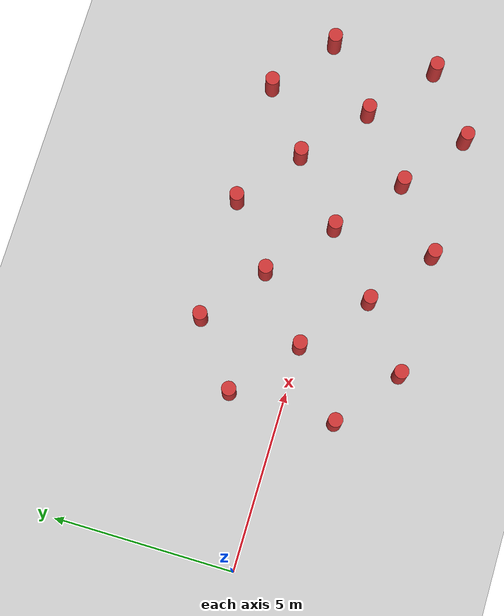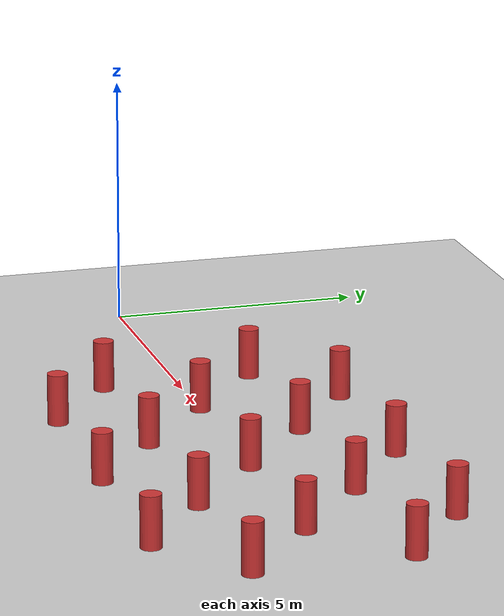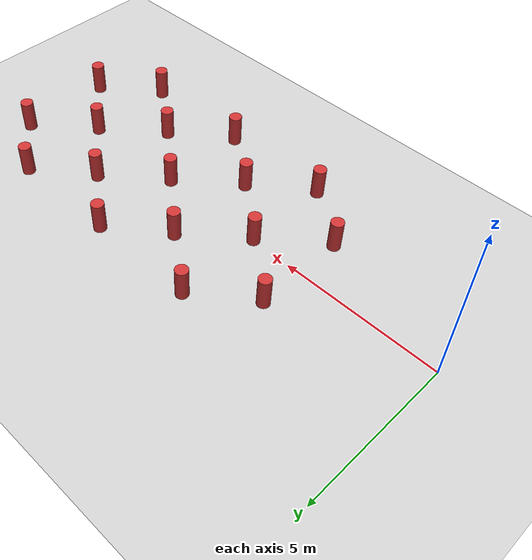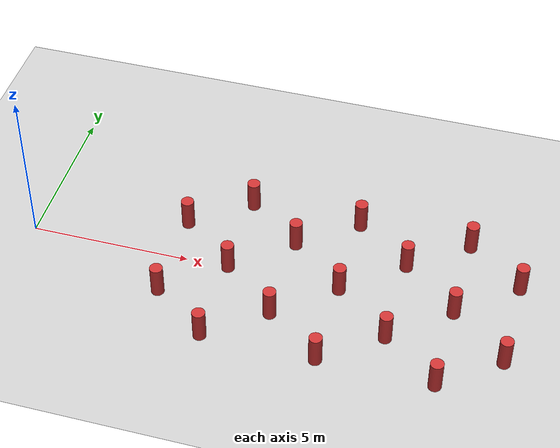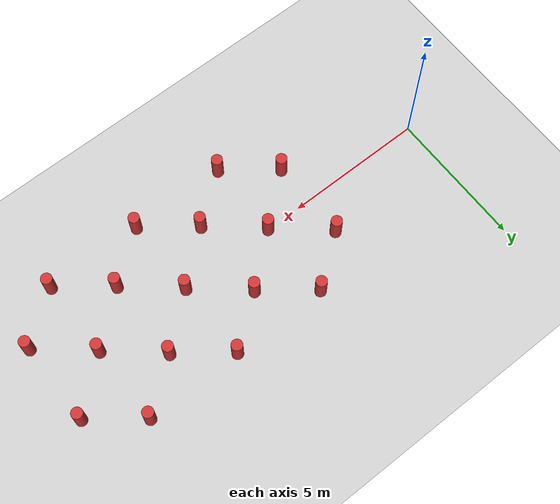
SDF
<?xml version="1.0" ?>
<sdf version="1.9">
  <world name="plum_dense">
    <physics name="default_physics" type="dart">
      <max_step_size>0.002</max_step_size>
      <real_time_factor>1.0</real_time_factor>
      <real_time_update_rate>500</real_time_update_rate>
      <dart>
        <solver><solver_type>pgs</solver_type></solver>
        <collision_detector>bullet</collision_detector>
      </dart>
    </physics>
    <plugin filename="gz-sim-sensors-system" name="gz::sim::systems::Sensors"><render_engine>ogre2</render_engine></plugin>
    <plugin filename="gz-sim-forcetorque-system" name="gz::sim::systems::ForceTorque"/>
    <plugin filename="gz-sim-physics-system" name="gz::sim::systems::Physics"/>
    <plugin filename="gz-sim-user-commands-system" name="gz::sim::systems::UserCommands"/>
    <plugin filename="gz-sim-scene-broadcaster-system" name="gz::sim::systems::SceneBroadcaster"/>
    <light type="directional" name="sun">
      <cast_shadows>true</cast_shadows><pose>0 0 10 0 0 0</pose>
      <diffuse>0.8 0.8 0.8 1</diffuse><specular>0.2 0.2 0.2 1</specular>
      <attenuation><range>1000</range><constant>0.9</constant><linear>0.01</linear><quadratic>0.001</quadratic></attenuation>
      <direction>-0.5 0.1 -0.9</direction>
    </light>
    <model name="ground_plane"><static>true</static><link name="link">
      <collision name="collision"><geometry><plane><normal>0 0 1</normal><size>100 100</size></plane></geometry>
        <surface><friction><ode><mu>0.8</mu><mu2>0.8</mu2></ode></friction></surface></collision>
      <visual name="visual"><geometry><plane><normal>0 0 1</normal><size>100 100</size></plane></geometry>
        <material><ambient>0.8 0.8 0.8 1</ambient><diffuse>0.8 0.8 0.8 1</diffuse></material></visual></link></model>
    <model name="obs_cyl_0"><static>true</static>
      <pose>4.56 1.48 0.5 0 0 0</pose>
      <link name="l"><collision name="c"><geometry><cylinder><radius>0.2</radius><length>1.0</length></cylinder></geometry></collision>
      <visual name="v"><geometry><cylinder><radius>0.2</radius><length>1.0</length></cylinder></geometry>
      <material><ambient>0.7 0.2 0.2 1</ambient><diffuse>0.8 0.2 0.2 1</diffuse></material></visual></link></model>
    <model name="obs_cyl_1"><static>true</static>
      <pose>4.56 -1.48 0.5 0 0 0</pose>
      <link name="l"><collision name="c"><geometry><cylinder><radius>0.2</radius><length>1.0</length></cylinder></geometry></collision>
      <visual name="v"><geometry><cylinder><radius>0.2</radius><length>1.0</length></cylinder></geometry>
      <material><ambient>0.7 0.2 0.2 1</ambient><diffuse>0.8 0.2 0.2 1</diffuse></material></visual></link></model>
    <model name="obs_cyl_2"><static>true</static>
      <pose>6.31 0.0 0.5 0 0 0</pose>
      <link name="l"><collision name="c"><geometry><cylinder><radius>0.2</radius><length>1.0</length></cylinder></geometry></collision>
      <visual name="v"><geometry><cylinder><radius>0.2</radius><length>1.0</length></cylinder></geometry>
      <material><ambient>0.7 0.2 0.2 1</ambient><diffuse>0.8 0.2 0.2 1</diffuse></material></visual></link></model>
    <model name="obs_cyl_3"><static>true</static>
      <pose>6.31 2.82 0.5 0 0 0</pose>
      <link name="l"><collision name="c"><geometry><cylinder><radius>0.2</radius><length>1.0</length></cylinder></geometry></collision>
      <visual name="v"><geometry><cylinder><radius>0.2</radius><length>1.0</length></cylinder></geometry>
      <material><ambient>0.7 0.2 0.2 1</ambient><diffuse>0.8 0.2 0.2 1</diffuse></material></visual></link></model>
    <model name="obs_cyl_4"><static>true</static>
      <pose>6.31 -2.82 0.5 0 0 0</pose>
      <link name="l"><collision name="c"><geometry><cylinder><radius>0.2</radius><length>1.0</length></cylinder></geometry></collision>
      <visual name="v"><geometry><cylinder><radius>0.2</radius><length>1.0</length></cylinder></geometry>
      <material><ambient>0.7 0.2 0.2 1</ambient><diffuse>0.8 0.2 0.2 1</diffuse></material></visual></link></model>
    <model name="obs_cyl_5"><static>true</static>
      <pose>8.05 1.48 0.5 0 0 0</pose>
      <link name="l"><collision name="c"><geometry><cylinder><radius>0.2</radius><length>1.0</length></cylinder></geometry></collision>
      <visual name="v"><geometry><cylinder><radius>0.2</radius><length>1.0</length></cylinder></geometry>
      <material><ambient>0.7 0.2 0.2 1</ambient><diffuse>0.8 0.2 0.2 1</diffuse></material></visual></link></model>
    <model name="obs_cyl_6"><static>true</static>
      <pose>8.05 -1.48 0.5 0 0 0</pose>
      <link name="l"><collision name="c"><geometry><cylinder><radius>0.2</radius><length>1.0</length></cylinder></geometry></collision>
      <visual name="v"><geometry><cylinder><radius>0.2</radius><length>1.0</length></cylinder></geometry>
      <material><ambient>0.7 0.2 0.2 1</ambient><diffuse>0.8 0.2 0.2 1</diffuse></material></visual></link></model>
    <model name="obs_cyl_7"><static>true</static>
      <pose>9.79 0.0 0.5 0 0 0</pose>
      <link name="l"><collision name="c"><geometry><cylinder><radius>0.2</radius><length>1.0</length></cylinder></geometry></collision>
      <visual name="v"><geometry><cylinder><radius>0.2</radius><length>1.0</length></cylinder></geometry>
      <material><ambient>0.7 0.2 0.2 1</ambient><diffuse>0.8 0.2 0.2 1</diffuse></material></visual></link></model>
    <model name="obs_cyl_8"><static>true</static>
      <pose>9.79 2.82 0.5 0 0 0</pose>
      <link name="l"><collision name="c"><geometry><cylinder><radius>0.2</radius><length>1.0</length></cylinder></geometry></collision>
      <visual name="v"><geometry><cylinder><radius>0.2</radius><length>1.0</length></cylinder></geometry>
      <material><ambient>0.7 0.2 0.2 1</ambient><diffuse>0.8 0.2 0.2 1</diffuse></material></visual></link></model>
    <model name="obs_cyl_9"><static>true</static>
      <pose>9.79 -2.82 0.5 0 0 0</pose>
      <link name="l"><collision name="c"><geometry><cylinder><radius>0.2</radius><length>1.0</length></cylinder></geometry></collision>
      <visual name="v"><geometry><cylinder><radius>0.2</radius><length>1.0</length></cylinder></geometry>
      <material><ambient>0.7 0.2 0.2 1</ambient><diffuse>0.8 0.2 0.2 1</diffuse></material></visual></link></model>
    <model name="obs_cyl_10"><static>true</static>
      <pose>11.54 1.48 0.5 0 0 0</pose>
      <link name="l"><collision name="c"><geometry><cylinder><radius>0.2</radius><length>1.0</length></cylinder></geometry></collision>
      <visual name="v"><geometry><cylinder><radius>0.2</radius><length>1.0</length></cylinder></geometry>
      <material><ambient>0.7 0.2 0.2 1</ambient><diffuse>0.8 0.2 0.2 1</diffuse></material></visual></link></model>
    <model name="obs_cyl_11"><static>true</static>
      <pose>11.54 -1.48 0.5 0 0 0</pose>
      <link name="l"><collision name="c"><geometry><cylinder><radius>0.2</radius><length>1.0</length></cylinder></geometry></collision>
      <visual name="v"><geometry><cylinder><radius>0.2</radius><length>1.0</length></cylinder></geometry>
      <material><ambient>0.7 0.2 0.2 1</ambient><diffuse>0.8 0.2 0.2 1</diffuse></material></visual></link></model>
    <model name="obs_cyl_12"><static>true</static>
      <pose>13.28 0.0 0.5 0 0 0</pose>
      <link name="l"><collision name="c"><geometry><cylinder><radius>0.2</radius><length>1.0</length></cylinder></geometry></collision>
      <visual name="v"><geometry><cylinder><radius>0.2</radius><length>1.0</length></cylinder></geometry>
      <material><ambient>0.7 0.2 0.2 1</ambient><diffuse>0.8 0.2 0.2 1</diffuse></material></visual></link></model>
    <model name="obs_cyl_13"><static>true</static>
      <pose>13.28 2.82 0.5 0 0 0</pose>
      <link name="l"><collision name="c"><geometry><cylinder><radius>0.2</radius><length>1.0</length></cylinder></geometry></collision>
      <visual name="v"><geometry><cylinder><radius>0.2</radius><length>1.0</length></cylinder></geometry>
      <material><ambient>0.7 0.2 0.2 1</ambient><diffuse>0.8 0.2 0.2 1</diffuse></material></visual></link></model>
    <model name="obs_cyl_14"><static>true</static>
      <pose>13.28 -2.82 0.5 0 0 0</pose>
      <link name="l"><collision name="c"><geometry><cylinder><radius>0.2</radius><length>1.0</length></cylinder></geometry></collision>
      <visual name="v"><geometry><cylinder><radius>0.2</radius><length>1.0</length></cylinder></geometry>
      <material><ambient>0.7 0.2 0.2 1</ambient><diffuse>0.8 0.2 0.2 1</diffuse></material></visual></link></model>
    <model name="obs_cyl_15"><static>true</static>
      <pose>15.02 1.48 0.5 0 0 0</pose>
      <link name="l"><collision name="c"><geometry><cylinder><radius>0.2</radius><length>1.0</length></cylinder></geometry></collision>
      <visual name="v"><geometry><cylinder><radius>0.2</radius><length>1.0</length></cylinder></geometry>
      <material><ambient>0.7 0.2 0.2 1</ambient><diffuse>0.8 0.2 0.2 1</diffuse></material></visual></link></model>
    <model name="obs_cyl_16"><static>true</static>
      <pose>15.02 -1.48 0.5 0 0 0</pose>
      <link name="l"><collision name="c"><geometry><cylinder><radius>0.2</radius><length>1.0</length></cylinder></geometry></collision>
      <visual name="v"><geometry><cylinder><radius>0.2</radius><length>1.0</length></cylinder></geometry>
      <material><ambient>0.7 0.2 0.2 1</ambient><diffuse>0.8 0.2 0.2 1</diffuse></material></visual></link></model>
    <model name="arena_cam"><static>true</static>
      <pose>9.8 -12 14 0 0.85 1.5708</pose>
      <link name="link">
        <sensor name="arena_cam" type="camera">
          <camera>
            <horizontal_fov>1.1</horizontal_fov>
            <image><width>1280</width><height>720</height></image>
            <clip><near>0.1</near><far>200</far></clip>
          </camera>
          <always_on>1</always_on><update_rate>30</update_rate>
          <topic>arena_cam/image</topic>
        </sensor>
      </link>
    </model>
  </world>
</sdf>
